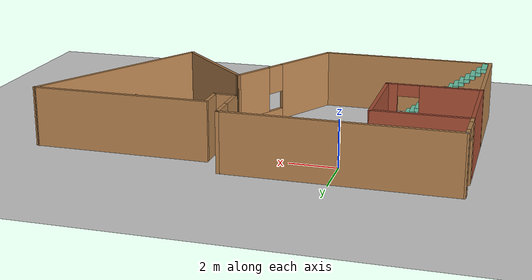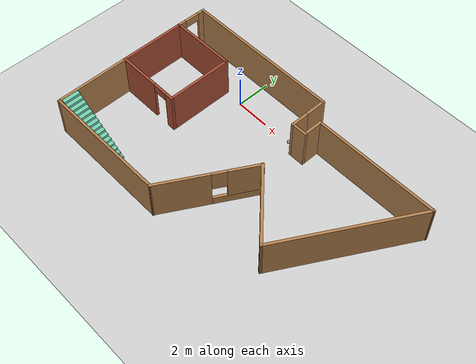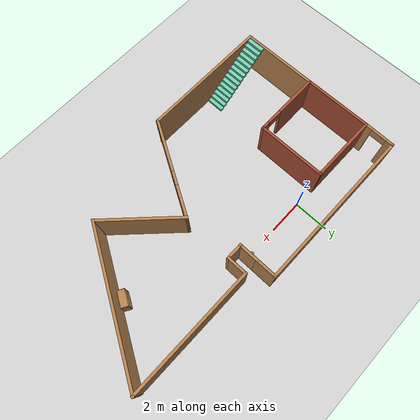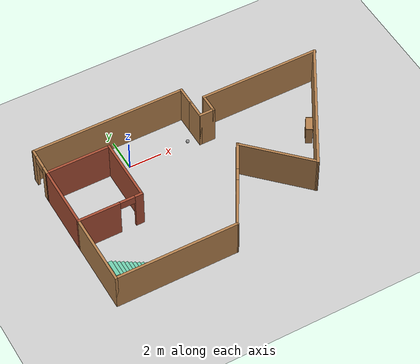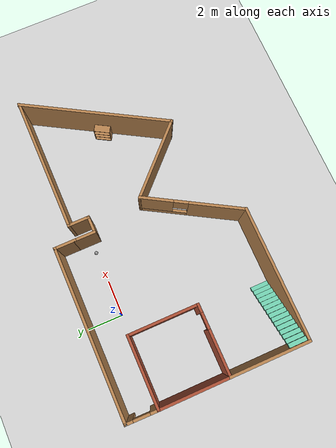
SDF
<sdf version="1.7">
 <world name="default">
  <model name="ground_plane">
   <static>1</static>
   <link name="link">
    <collision name="collision">
     <geometry><plane><normal>0 0 1</normal><size>100 100</size></plane></geometry>
     <surface>
      <contact><collide_bitmask>65535</collide_bitmask></contact>
      <friction><ode><mu>100</mu><mu2>50</mu2></ode></friction>
     </surface>
    </collision>
    <visual name="visual">
     <cast_shadows>0</cast_shadows>
     <geometry><plane><normal>0 0 1</normal><size>100 100</size></plane></geometry>
     <material>
      <script><uri>file://media/materials/scripts/gazebo.material</uri><name>Gazebo/Grey</name></script>
     </material>
    </visual>
   </link>
  </model>
  <model name="Building">
   <pose>3.7698 -3.19808 0 0 -0 0</pose>
   <link name="Stairs_3">
    <visual name="Stairs_3_Visual_0">
     <pose>-5.32922 -4.35034 0.083333 0 -0 -1.5708</pose>
     <geometry><box><size>1 0.233333 0.166667</size></box></geometry>
     <material>
      <script><uri>file://media/materials/scripts/gazebo.material</uri><name>Gazebo/Grey</name></script>
      <ambient>0.435294 0.796078 0.67451 1</ambient>
     </material>
     <meta><layer>0</layer></meta>
    </visual>
    <collision name="Stairs_3_Collision_0">
     <geometry><box><size>1 0.233333 0.166667</size></box></geometry>
     <pose>-5.32922 -4.35034 0.083333 0 -0 -1.5708</pose>
    </collision>
    <visual name="Stairs_3_Visual_1">
     <pose>-5.56255 -4.35034 0.25 0 -0 -1.5708</pose>
     <geometry><box><size>1 0.233333 0.166667</size></box></geometry>
     <material>
      <script><uri>file://media/materials/scripts/gazebo.material</uri><name>Gazebo/Grey</name></script>
      <ambient>0.435294 0.796078 0.67451 1</ambient>
     </material>
     <meta><layer>0</layer></meta>
    </visual>
    <collision name="Stairs_3_Collision_1">
     <geometry><box><size>1 0.233333 0.166667</size></box></geometry>
     <pose>-5.56255 -4.35034 0.25 0 -0 -1.5708</pose>
    </collision>
    <visual name="Stairs_3_Visual_2">
     <pose>-5.79589 -4.35034 0.416667 0 -0 -1.5708</pose>
     <geometry><box><size>1 0.233333 0.166667</size></box></geometry>
     <material>
      <script><uri>file://media/materials/scripts/gazebo.material</uri><name>Gazebo/Grey</name></script>
      <ambient>0.435294 0.796078 0.67451 1</ambient>
     </material>
     <meta><layer>0</layer></meta>
    </visual>
    <collision name="Stairs_3_Collision_2">
     <geometry><box><size>1 0.233333 0.166667</size></box></geometry>
     <pose>-5.79589 -4.35034 0.416667 0 -0 -1.5708</pose>
    </collision>
    <visual name="Stairs_3_Visual_3">
     <pose>-6.02922 -4.35034 0.583333 0 -0 -1.5708</pose>
     <geometry><box><size>1 0.233333 0.166667</size></box></geometry>
     <material>
      <script><uri>file://media/materials/scripts/gazebo.material</uri><name>Gazebo/Grey</name></script>
      <ambient>0.435294 0.796078 0.67451 1</ambient>
     </material>
     <meta><layer>0</layer></meta>
    </visual>
    <collision name="Stairs_3_Collision_3">
     <geometry><box><size>1 0.233333 0.166667</size></box></geometry>
     <pose>-6.02922 -4.35034 0.583333 0 -0 -1.5708</pose>
    </collision>
    <visual name="Stairs_3_Visual_4">
     <pose>-6.26255 -4.35034 0.75 0 -0 -1.5708</pose>
     <geometry><box><size>1 0.233333 0.166667</size></box></geometry>
     <material>
      <script><uri>file://media/materials/scripts/gazebo.material</uri><name>Gazebo/Grey</name></script>
      <ambient>0.435294 0.796078 0.67451 1</ambient>
     </material>
     <meta><layer>0</layer></meta>
    </visual>
    <collision name="Stairs_3_Collision_4">
     <geometry><box><size>1 0.233333 0.166667</size></box></geometry>
     <pose>-6.26255 -4.35034 0.75 0 -0 -1.5708</pose>
    </collision>
    <visual name="Stairs_3_Visual_5">
     <pose>-6.49589 -4.35034 0.916667 0 -0 -1.5708</pose>
     <geometry><box><size>1 0.233333 0.166667</size></box></geometry>
     <material>
      <script><uri>file://media/materials/scripts/gazebo.material</uri><name>Gazebo/Grey</name></script>
      <ambient>0.435294 0.796078 0.67451 1</ambient>
     </material>
     <meta><layer>0</layer></meta>
    </visual>
    <collision name="Stairs_3_Collision_5">
     <geometry><box><size>1 0.233333 0.166667</size></box></geometry>
     <pose>-6.49589 -4.35034 0.916667 0 -0 -1.5708</pose>
    </collision>
    <visual name="Stairs_3_Visual_6">
     <pose>-6.72922 -4.35034 1.08333 0 -0 -1.5708</pose>
     <geometry><box><size>1 0.233333 0.166667</size></box></geometry>
     <material>
      <script><uri>file://media/materials/scripts/gazebo.material</uri><name>Gazebo/Grey</name></script>
      <ambient>0.435294 0.796078 0.67451 1</ambient>
     </material>
     <meta><layer>0</layer></meta>
    </visual>
    <collision name="Stairs_3_Collision_6">
     <geometry><box><size>1 0.233333 0.166667</size></box></geometry>
     <pose>-6.72922 -4.35034 1.08333 0 -0 -1.5708</pose>
    </collision>
    <visual name="Stairs_3_Visual_7">
     <pose>-6.96255 -4.35034 1.25 0 -0 -1.5708</pose>
     <geometry><box><size>1 0.233333 0.166667</size></box></geometry>
     <material>
      <script><uri>file://media/materials/scripts/gazebo.material</uri><name>Gazebo/Grey</name></script>
      <ambient>0.435294 0.796078 0.67451 1</ambient>
     </material>
     <meta><layer>0</layer></meta>
    </visual>
    <collision name="Stairs_3_Collision_7">
     <geometry><box><size>1 0.233333 0.166667</size></box></geometry>
     <pose>-6.96255 -4.35034 1.25 0 -0 -1.5708</pose>
    </collision>
    <visual name="Stairs_3_Visual_8">
     <pose>-7.19589 -4.35034 1.41667 0 -0 -1.5708</pose>
     <geometry><box><size>1 0.233333 0.166667</size></box></geometry>
     <material>
      <script><uri>file://media/materials/scripts/gazebo.material</uri><name>Gazebo/Grey</name></script>
      <ambient>0.435294 0.796078 0.67451 1</ambient>
     </material>
     <meta><layer>0</layer></meta>
    </visual>
    <collision name="Stairs_3_Collision_8">
     <geometry><box><size>1 0.233333 0.166667</size></box></geometry>
     <pose>-7.19589 -4.35034 1.41667 0 -0 -1.5708</pose>
    </collision>
    <visual name="Stairs_3_Visual_9">
     <pose>-7.42922 -4.35034 1.58333 0 -0 -1.5708</pose>
     <geometry><box><size>1 0.233333 0.166667</size></box></geometry>
     <material>
      <script><uri>file://media/materials/scripts/gazebo.material</uri><name>Gazebo/Grey</name></script>
      <ambient>0.435294 0.796078 0.67451 1</ambient>
     </material>
     <meta><layer>0</layer></meta>
    </visual>
    <collision name="Stairs_3_Collision_9">
     <geometry><box><size>1 0.233333 0.166667</size></box></geometry>
     <pose>-7.42922 -4.35034 1.58333 0 -0 -1.5708</pose>
    </collision>
    <visual name="Stairs_3_Visual_10">
     <pose>-7.66255 -4.35034 1.75 0 -0 -1.5708</pose>
     <geometry><box><size>1 0.233333 0.166667</size></box></geometry>
     <material>
      <script><uri>file://media/materials/scripts/gazebo.material</uri><name>Gazebo/Grey</name></script>
      <ambient>0.435294 0.796078 0.67451 1</ambient>
     </material>
     <meta><layer>0</layer></meta>
    </visual>
    <collision name="Stairs_3_Collision_10">
     <geometry><box><size>1 0.233333 0.166667</size></box></geometry>
     <pose>-7.66255 -4.35034 1.75 0 -0 -1.5708</pose>
    </collision>
    <visual name="Stairs_3_Visual_11">
     <pose>-7.89589 -4.35034 1.91667 0 -0 -1.5708</pose>
     <geometry><box><size>1 0.233333 0.166667</size></box></geometry>
     <material>
      <script><uri>file://media/materials/scripts/gazebo.material</uri><name>Gazebo/Grey</name></script>
      <ambient>0.435294 0.796078 0.67451 1</ambient>
     </material>
     <meta><layer>0</layer></meta>
    </visual>
    <collision name="Stairs_3_Collision_11">
     <geometry><box><size>1 0.233333 0.166667</size></box></geometry>
     <pose>-7.89589 -4.35034 1.91667 0 -0 -1.5708</pose>
    </collision>
    <visual name="Stairs_3_Visual_12">
     <pose>-8.12922 -4.35034 2.08333 0 -0 -1.5708</pose>
     <geometry><box><size>1 0.233333 0.166667</size></box></geometry>
     <material>
      <script><uri>file://media/materials/scripts/gazebo.material</uri><name>Gazebo/Grey</name></script>
      <ambient>0.435294 0.796078 0.67451 1</ambient>
     </material>
     <meta><layer>0</layer></meta>
    </visual>
    <collision name="Stairs_3_Collision_12">
     <geometry><box><size>1 0.233333 0.166667</size></box></geometry>
     <pose>-8.12922 -4.35034 2.08333 0 -0 -1.5708</pose>
    </collision>
    <visual name="Stairs_3_Visual_13">
     <pose>-8.36255 -4.35034 2.25 0 -0 -1.5708</pose>
     <geometry><box><size>1 0.233333 0.166667</size></box></geometry>
     <material>
      <script><uri>file://media/materials/scripts/gazebo.material</uri><name>Gazebo/Grey</name></script>
      <ambient>0.435294 0.796078 0.67451 1</ambient>
     </material>
     <meta><layer>0</layer></meta>
    </visual>
    <collision name="Stairs_3_Collision_13">
     <geometry><box><size>1 0.233333 0.166667</size></box></geometry>
     <pose>-8.36255 -4.35034 2.25 0 -0 -1.5708</pose>
    </collision>
    <visual name="Stairs_3_Visual_14">
     <pose>-8.59589 -4.35034 2.41667 0 -0 -1.5708</pose>
     <geometry><box><size>1 0.233333 0.166667</size></box></geometry>
     <material>
      <script><uri>file://media/materials/scripts/gazebo.material</uri><name>Gazebo/Grey</name></script>
      <ambient>0.435294 0.796078 0.67451 1</ambient>
     </material>
     <meta><layer>0</layer></meta>
    </visual>
    <collision name="Stairs_3_Collision_14">
     <geometry><box><size>1 0.233333 0.166667</size></box></geometry>
     <pose>-8.59589 -4.35034 2.41667 0 -0 -1.5708</pose>
    </collision>
   </link>
   <link name="Wall_0">
    <collision name="Wall_0_Collision">
     <geometry><box><size>4 0.15 2.5</size></box></geometry>
     <pose>0 0 1.25 0 -0 0</pose>
    </collision>
    <visual name="Wall_0_Visual">
     <pose>0 0 1.25 0 -0 0</pose>
     <geometry><box><size>4 0.15 2.5</size></box></geometry>
     <material>
      <script><uri>file://media/materials/scripts/gazebo.material</uri><name>Gazebo/Bricks</name></script>
      <ambient>1 1 1 1</ambient>
     </material>
     <meta><layer>0</layer></meta>
    </visual>
    <pose>-8.80198 1.32395 0 0 -0 1.5708</pose>
   </link>
   <link name="Wall_10">
    <collision name="Wall_10_Collision">
     <geometry><box><size>8.5 0.15 2.5</size></box></geometry>
     <pose>0 0 1.25 0 -0 0</pose>
    </collision>
    <visual name="Wall_10_Visual">
     <pose>0 0 1.25 0 -0 0</pose>
     <geometry><box><size>8.5 0.15 2.5</size></box></geometry>
     <material>
      <script><uri>file://media/materials/scripts/gazebo.material</uri><name>Gazebo/Wood</name></script>
      <ambient>1 1 1 1</ambient>
     </material>
     <meta><layer>0</layer></meta>
    </visual>
    <pose>6.68821 0.261655 0 0 -0 1.0472</pose>
   </link>
   <link name="Wall_11">
    <collision name="Wall_11_Collision">
     <geometry><box><size>7.5 0.15 2.5</size></box></geometry>
     <pose>0 0 1.25 0 -0 0</pose>
    </collision>
    <visual name="Wall_11_Visual">
     <pose>0 0 1.25 0 -0 0</pose>
     <geometry><box><size>7.5 0.15 2.5</size></box></geometry>
     <material>
      <script><uri>file://media/materials/scripts/gazebo.material</uri><name>Gazebo/Wood</name></script>
      <ambient>1 1 1 1</ambient>
     </material>
     <meta><layer>0</layer></meta>
    </visual>
    <pose>5.10072 3.87731 0 0 -0 3.14159</pose>
   </link>
   <link name="Wall_12">
    <collision name="Wall_12_Collision">
     <geometry><box><size>1.25 0.15 2.5</size></box></geometry>
     <pose>0 0 1.25 0 -0 0</pose>
    </collision>
    <visual name="Wall_12_Visual">
     <pose>0 0 1.25 0 -0 0</pose>
     <geometry><box><size>1.25 0.15 2.5</size></box></geometry>
     <material>
      <script><uri>file://media/materials/scripts/gazebo.material</uri><name>Gazebo/Wood</name></script>
      <ambient>1 1 1 1</ambient>
     </material>
     <meta><layer>0</layer></meta>
    </visual>
    <pose>1.42572 3.32731 0 0 -0 -1.5708</pose>
   </link>
   <link name="Wall_13">
    <collision name="Wall_13_Collision">
     <geometry><box><size>1 0.15 2.5</size></box></geometry>
     <pose>0 0 1.25 0 -0 0</pose>
    </collision>
    <visual name="Wall_13_Visual">
     <pose>0 0 1.25 0 -0 0</pose>
     <geometry><box><size>1 0.15 2.5</size></box></geometry>
     <material>
      <script><uri>file://media/materials/scripts/gazebo.material</uri><name>Gazebo/Wood</name></script>
      <ambient>1 1 1 1</ambient>
     </material>
     <meta><layer>0</layer></meta>
    </visual>
    <pose>1.00072 2.77731 0 0 -0 3.14159</pose>
   </link>
   <link name="Wall_14">
    <collision name="Wall_14_Collision">
     <geometry><box><size>1.25 0.15 2.5</size></box></geometry>
     <pose>0 0 1.25 0 -0 0</pose>
    </collision>
    <visual name="Wall_14_Visual">
     <pose>0 0 1.25 0 -0 0</pose>
     <geometry><box><size>1.25 0.15 2.5</size></box></geometry>
     <material>
      <script><uri>file://media/materials/scripts/gazebo.material</uri><name>Gazebo/Wood</name></script>
      <ambient>1 1 1 1</ambient>
     </material>
     <meta><layer>0</layer></meta>
    </visual>
    <pose>0.575715 3.32731 0 0 -0 1.5708</pose>
   </link>
   <link name="Wall_15">
    <collision name="Wall_15_Collision">
     <geometry><box><size>1.25 0.15 2.5</size></box></geometry>
     <pose>0 0 1.25 0 -0 0</pose>
    </collision>
    <visual name="Wall_15_Visual">
     <pose>0 0 1.25 0 -0 0</pose>
     <geometry><box><size>1.25 0.15 2.5</size></box></geometry>
     <material>
      <script><uri>file://media/materials/scripts/gazebo.material</uri><name>Gazebo/Wood</name></script>
      <ambient>1 1 1 1</ambient>
     </material>
     <meta><layer>0</layer></meta>
    </visual>
    <pose>0.575715 4.42731 0 0 -0 1.5708</pose>
   </link>
   <link name="Wall_16">
    <collision name="Wall_16_Collision">
     <geometry><box><size>9.5 0.15 2.5</size></box></geometry>
     <pose>0 0 1.25 0 -0 0</pose>
    </collision>
    <visual name="Wall_16_Visual">
     <pose>0 0 1.25 0 -0 0</pose>
     <geometry><box><size>9.5 0.15 2.5</size></box></geometry>
     <material>
      <script><uri>file://media/materials/scripts/gazebo.material</uri><name>Gazebo/Wood</name></script>
      <ambient>1 1 1 1</ambient>
     </material>
     <meta><layer>0</layer></meta>
    </visual>
    <pose>-4.09929 4.97731 0 0 -0 3.14159</pose>
   </link>
   <link name="Wall_18">
    <collision name="Wall_18_Collision">
     <geometry><box><size>0.15 0.15 2.5</size></box></geometry>
     <pose>0 0 1.25 0 -0 0</pose>
    </collision>
    <visual name="Wall_18_Visual">
     <pose>0 0 1.25 0 -0 0</pose>
     <geometry><box><size>0.15 0.15 2.5</size></box></geometry>
     <material>
      <script><uri>file://media/materials/scripts/gazebo.material</uri><name>Gazebo/Grey</name></script>
      <ambient>1 1 1 1</ambient>
     </material>
     <meta><layer>0</layer></meta>
    </visual>
    <pose>-8.77429 4.97731 0 0 -0 0</pose>
   </link>
   <link name="Wall_2">
    <collision name="Wall_2_Collision">
     <geometry><box><size>4 0.15 2.5</size></box></geometry>
     <pose>0 0 1.25 0 -0 0</pose>
    </collision>
    <visual name="Wall_2_Visual">
     <pose>0 0 1.25 0 -0 0</pose>
     <geometry><box><size>4 0.15 2.5</size></box></geometry>
     <material>
      <script><uri>file://media/materials/scripts/gazebo.material</uri><name>Gazebo/Bricks</name></script>
      <ambient>1 1 1 1</ambient>
     </material>
     <meta><layer>0</layer></meta>
    </visual>
    <pose>-6.87698 3.24895 0 0 -0 0</pose>
   </link>
   <link name="Wall_3">
    <collision name="Wall_3_Collision">
     <geometry><box><size>4 0.15 2.5</size></box></geometry>
     <pose>0 0 1.25 0 -0 0</pose>
    </collision>
    <visual name="Wall_3_Visual">
     <pose>0 0 1.25 0 -0 0</pose>
     <geometry><box><size>4 0.15 2.5</size></box></geometry>
     <material>
      <script><uri>file://media/materials/scripts/gazebo.material</uri><name>Gazebo/Bricks</name></script>
      <ambient>1 1 1 1</ambient>
     </material>
     <meta><layer>0</layer></meta>
    </visual>
    <pose>-4.95198 1.32395 0 0 -0 -1.5708</pose>
   </link>
   <link name="Wall_36">
    <pose>-8.78813 4.11313 0 0 -0 -1.58682</pose>
    <visual name="Wall_36_Visual_0">
     <pose>-0.702164 0 1.25 0 -0 0</pose>
     <geometry><box><size>0.474256 0.15 2.5</size></box></geometry>
     <material>
      <script><uri>file://media/materials/scripts/gazebo.material</uri><name>Gazebo/Wood</name></script>
      <ambient>1 1 1 1</ambient>
     </material>
     <meta><layer>0</layer></meta>
    </visual>
    <collision name="Wall_36_Collision_0">
     <geometry><box><size>0.474256 0.15 2.5</size></box></geometry>
     <pose>-0.702164 0 1.25 0 -0 0</pose>
    </collision>
    <visual name="Wall_36_Visual_1">
     <pose>0.687128 0 1.25 0 -0 0</pose>
     <geometry><box><size>0.504329 0.15 2.5</size></box></geometry>
     <material>
      <script><uri>file://media/materials/scripts/gazebo.material</uri><name>Gazebo/Wood</name></script>
      <ambient>1 1 1 1</ambient>
     </material>
     <meta><layer>0</layer></meta>
    </visual>
    <collision name="Wall_36_Collision_1">
     <geometry><box><size>0.504329 0.15 2.5</size></box></geometry>
     <pose>0.687128 0 1.25 0 -0 0</pose>
    </collision>
    <visual name="Wall_36_Visual_2">
     <pose>-0.015036 0 2.25 0 -0 0</pose>
     <geometry><box><size>0.9 0.15 0.5</size></box></geometry>
     <material>
      <script><uri>file://media/materials/scripts/gazebo.material</uri><name>Gazebo/Wood</name></script>
      <ambient>1 1 1 1</ambient>
     </material>
     <meta><layer>0</layer></meta>
    </visual>
    <collision name="Wall_36_Collision_2">
     <geometry><box><size>0.9 0.15 0.5</size></box></geometry>
     <pose>-0.015036 0 2.25 0 -0 0</pose>
    </collision>
   </link>
   <link name="Wall_38">
    <pose>-6.87698 -0.601052 0 0 -0 3.14159</pose>
    <visual name="Wall_38_Visual_0">
     <pose>-1.74342 0 1.25 0 -0 0</pose>
     <geometry><box><size>0.513155 0.15 2.5</size></box></geometry>
     <material>
      <script><uri>file://media/materials/scripts/gazebo.material</uri><name>Gazebo/Bricks</name></script>
      <ambient>1 1 1 1</ambient>
     </material>
     <meta><layer>0</layer></meta>
    </visual>
    <collision name="Wall_38_Collision_0">
     <geometry><box><size>0.513155 0.15 2.5</size></box></geometry>
     <pose>-1.74342 0 1.25 0 -0 0</pose>
    </collision>
    <visual name="Wall_38_Visual_1">
     <pose>0.706577 0 1.25 0 -0 0</pose>
     <geometry><box><size>2.58684 0.15 2.5</size></box></geometry>
     <material>
      <script><uri>file://media/materials/scripts/gazebo.material</uri><name>Gazebo/Bricks</name></script>
      <ambient>1 1 1 1</ambient>
     </material>
     <meta><layer>0</layer></meta>
    </visual>
    <collision name="Wall_38_Collision_1">
     <geometry><box><size>2.58684 0.15 2.5</size></box></geometry>
     <pose>0.706577 0 1.25 0 -0 0</pose>
    </collision>
    <visual name="Wall_38_Visual_2">
     <pose>-1.03685 0 2.25 0 -0 0</pose>
     <geometry><box><size>0.9 0.15 0.5</size></box></geometry>
     <material>
      <script><uri>file://media/materials/scripts/gazebo.material</uri><name>Gazebo/Bricks</name></script>
      <ambient>1 1 1 1</ambient>
     </material>
     <meta><layer>0</layer></meta>
    </visual>
    <collision name="Wall_38_Collision_2">
     <geometry><box><size>0.9 0.15 0.5</size></box></geometry>
     <pose>-1.03685 0 2.25 0 -0 0</pose>
    </collision>
   </link>
   <link name="Wall_6">
    <collision name="Wall_6_Collision">
     <geometry><box><size>4.5 0.15 2.5</size></box></geometry>
     <pose>0 0 1.25 0 -0 0</pose>
    </collision>
    <visual name="Wall_6_Visual">
     <pose>0 0 1.25 0 -0 0</pose>
     <geometry><box><size>4.5 0.15 2.5</size></box></geometry>
     <material>
      <script><uri>file://media/materials/scripts/gazebo.material</uri><name>Gazebo/Wood</name></script>
      <ambient>1 1 1 1</ambient>
     </material>
     <meta><layer>0</layer></meta>
    </visual>
    <pose>-8.80198 -2.77605 0 0 -0 -1.5708</pose>
   </link>
   <link name="Wall_7">
    <collision name="Wall_7_Collision">
     <geometry><box><size>7.5 0.15 2.5</size></box></geometry>
     <pose>0 0 1.25 0 -0 0</pose>
    </collision>
    <visual name="Wall_7_Visual">
     <pose>0 0 1.25 0 -0 0</pose>
     <geometry><box><size>7.5 0.15 2.5</size></box></geometry>
     <material>
      <script><uri>file://media/materials/scripts/gazebo.material</uri><name>Gazebo/Wood</name></script>
      <ambient>1 1 1 1</ambient>
     </material>
     <meta><layer>0</layer></meta>
    </visual>
    <pose>-5.12698 -4.95105 0 0 -0 0</pose>
   </link>
   <link name="Wall_8">
    <pose>-0.051976 -2.52618 0 0 -0 1.0472</pose>
    <visual name="Wall_8_Visual_0">
     <pose>-1.33048 0 1.25 0 -0 0</pose>
     <geometry><box><size>3.08904 0.15 2.5</size></box></geometry>
     <material>
      <script><uri>file://media/materials/scripts/gazebo.material</uri><name>Gazebo/Wood</name></script>
      <ambient>1 1 1 1</ambient>
     </material>
     <meta><layer>0</layer></meta>
    </visual>
    <collision name="Wall_8_Collision_0">
     <geometry><box><size>3.08904 0.15 2.5</size></box></geometry>
     <pose>-1.33048 0 1.25 0 -0 0</pose>
    </collision>
    <visual name="Wall_8_Visual_1">
     <pose>1.54452 0 0.25 0 -0 0</pose>
     <geometry><box><size>2.66096 0.15 0.5</size></box></geometry>
     <material>
      <script><uri>file://media/materials/scripts/gazebo.material</uri><name>Gazebo/Wood</name></script>
      <ambient>1 1 1 1</ambient>
     </material>
     <meta><layer>0</layer></meta>
    </visual>
    <collision name="Wall_8_Collision_1">
     <geometry><box><size>2.66096 0.15 0.5</size></box></geometry>
     <pose>1.54452 0 0.25 0 -0 0</pose>
    </collision>
    <visual name="Wall_8_Visual_2">
     <pose>1.94452 0 1.5 0 -0 0</pose>
     <geometry><box><size>1.86096 0.15 2</size></box></geometry>
     <material>
      <script><uri>file://media/materials/scripts/gazebo.material</uri><name>Gazebo/Wood</name></script>
      <ambient>1 1 1 1</ambient>
     </material>
     <meta><layer>0</layer></meta>
    </visual>
    <collision name="Wall_8_Collision_2">
     <geometry><box><size>1.86096 0.15 2</size></box></geometry>
     <pose>1.94452 0 1.5 0 -0 0</pose>
    </collision>
    <visual name="Wall_8_Visual_3">
     <pose>0.614037 0 1.9 0 -0 0</pose>
     <geometry><box><size>0.8 0.15 1.2</size></box></geometry>
     <material>
      <script><uri>file://media/materials/scripts/gazebo.material</uri><name>Gazebo/Wood</name></script>
      <ambient>1 1 1 1</ambient>
     </material>
     <meta><layer>0</layer></meta>
    </visual>
    <collision name="Wall_8_Collision_3">
     <geometry><box><size>0.8 0.15 1.2</size></box></geometry>
     <pose>0.614037 0 1.9 0 -0 0</pose>
    </collision>
   </link>
   <link name="Wall_9">
    <collision name="Wall_9_Collision">
     <geometry><box><size>4.75 0.15 2.5</size></box></geometry>
     <pose>0 0 1.25 0 -0 0</pose>
    </collision>
    <visual name="Wall_9_Visual">
     <pose>0 0 1.25 0 -0 0</pose>
     <geometry><box><size>4.75 0.15 2.5</size></box></geometry>
     <material>
      <script><uri>file://media/materials/scripts/gazebo.material</uri><name>Gazebo/Wood</name></script>
      <ambient>1 1 1 1</ambient>
     </material>
     <meta><layer>0</layer></meta>
    </visual>
    <pose>2.97437 -1.72765 0 0 -0 -0.785398</pose>
   </link>
   <static>1</static>
  </model>
  <model name="RSWhiteBall">
   <link name="link_0">
    <inertial>
     <mass>1</mass>
     <inertia><ixx>0.1</ixx><ixy>0</ixy><ixz>0</ixz><iyy>0.1</iyy><iyz>0</iyz><izz>0.1</izz></inertia>
    </inertial>
    <visual name="visual">
     <geometry><sphere><radius>0.1</radius></sphere></geometry>
     <material>
      <lighting>1</lighting>
      <script><uri>file://media/materials/scripts/gazebo.material</uri><name>Gazebo/Grey</name></script>
      <shader type="pixel"><normal_map>__default__</normal_map></shader>
      <ambient>1 1 1 1</ambient>
      <diffuse>1 1 1 1</diffuse>
      <specular>1 1 1 1</specular>
      <emissive>1 1 1 1</emissive>
     </material>
    </visual>
    <collision name="collision">
     <geometry><sphere><radius>0.1</radius></sphere></geometry>
     <surface>
      <friction>
       <ode><mu>1</mu><mu2>1</mu2><fdir1>0 0 0</fdir1><slip1>0</slip1><slip2>0</slip2></ode>
       <torsional>
        <coefficient>1</coefficient>
        <patch_radius>0</patch_radius>
        <surface_radius>0</surface_radius>
        <use_patch_radius>1</use_patch_radius>
        <ode><slip>0</slip></ode>
       </torsional>
      </friction>
      <bounce><restitution_coefficient>0</restitution_coefficient><threshold>1e+06</threshold></bounce>
      <contact>
       <collide_without_contact>0</collide_without_contact>
       <collide_without_contact_bitmask>1</collide_without_contact_bitmask>
       <collide_bitmask>1</collide_bitmask>
       <ode>
        <soft_cfm>0</soft_cfm>
        <soft_erp>0.2</soft_erp>
        <kp>1e+13</kp>
        <kd>1</kd>
        <max_vel>0.01</max_vel>
        <min_depth>0</min_depth>
       </ode>
       <bullet>
        <split_impulse>1</split_impulse>
        <split_impulse_penetration_threshold>-0.01</split_impulse_penetration_threshold>
        <soft_cfm>0</soft_cfm>
        <soft_erp>0.2</soft_erp>
        <kp>1e+13</kp>
        <kd>1</kd>
       </bullet>
      </contact>
     </surface>
    </collision>
   </link>
   <static>0</static>
   <pose>3.75562 0.021016 0.1 0 -0 0</pose>
  </model>
  <model name="bookshelf">
   <static>1</static>
   <link name="link">
    <inertial><mass>1</mass></inertial>
    <collision name="back">
     <pose>0 0.005 0.6 0 -0 0</pose>
     <geometry><box><size>0.9 0.01 1.2</size></box></geometry>
    </collision>
    <visual name="visual1">
     <pose>0 0.005 0.6 0 -0 0</pose>
     <geometry><box><size>0.9 0.01 1.2</size></box></geometry>
     <material>
      <script><uri>file://media/materials/scripts/gazebo.material</uri><name>Gazebo/Wood</name></script>
     </material>
    </visual>
    <collision name="left_side">
     <pose>0.45 -0.195 0.6 0 -0 0</pose>
     <geometry><box><size>0.02 0.4 1.2</size></box></geometry>
    </collision>
    <visual name="visual2">
     <pose>0.45 -0.195 0.6 0 -0 0</pose>
     <geometry><box><size>0.02 0.4 1.2</size></box></geometry>
     <material>
      <script><uri>file://media/materials/scripts/gazebo.material</uri><name>Gazebo/Wood</name></script>
     </material>
    </visual>
    <collision name="right_side">
     <pose>-0.45 -0.195 0.6 0 -0 0</pose>
     <geometry><box><size>0.02 0.4 1.2</size></box></geometry>
    </collision>
    <visual name="visual3">
     <pose>-0.45 -0.195 0.6 0 -0 0</pose>
     <geometry><box><size>0.02 0.4 1.2</size></box></geometry>
     <material>
      <script><uri>file://media/materials/scripts/gazebo.material</uri><name>Gazebo/Wood</name></script>
     </material>
    </visual>
    <collision name="bottom">
     <pose>0 -0.195 0.03 0 -0 0</pose>
     <geometry><box><size>0.88 0.4 0.06</size></box></geometry>
    </collision>
    <visual name="visual4">
     <pose>0 -0.195 0.03 0 -0 0</pose>
     <geometry><box><size>0.88 0.4 0.06</size></box></geometry>
     <material>
      <script><uri>file://media/materials/scripts/gazebo.material</uri><name>Gazebo/Wood</name></script>
     </material>
    </visual>
    <collision name="top">
     <pose>0 -0.195 1.19 0 -0 0</pose>
     <geometry><box><size>0.88 0.4 0.02</size></box></geometry>
    </collision>
    <visual name="visual5">
     <pose>0 -0.195 1.19 0 -0 0</pose>
     <geometry><box><size>0.88 0.4 0.02</size></box></geometry>
     <material>
      <script><uri>file://media/materials/scripts/gazebo.material</uri><name>Gazebo/Wood</name></script>
     </material>
    </visual>
    <collision name="low_shelf">
     <pose>0 -0.195 0.43 0 -0 0</pose>
     <geometry><box><size>0.88 0.4 0.02</size></box></geometry>
    </collision>
    <visual name="visual6">
     <pose>0 -0.195 0.43 0 -0 0</pose>
     <geometry><box><size>0.88 0.4 0.02</size></box></geometry>
     <material>
      <script><uri>file://media/materials/scripts/gazebo.material</uri><name>Gazebo/Wood</name></script>
     </material>
    </visual>
    <collision name="high_shelf">
     <pose>0 -0.195 0.8 0 -0 0</pose>
     <geometry><box><size>0.88 0.4 0.02</size></box></geometry>
    </collision>
    <visual name="visual7">
     <pose>0 -0.195 0.8 0 -0 0</pose>
     <geometry><box><size>0.88 0.4 0.02</size></box></geometry>
     <material>
      <script><uri>file://media/materials/scripts/gazebo.material</uri><name>Gazebo/Wood</name></script>
     </material>
    </visual>
   </link>
   <pose>10.1802 -3.1177 0 0 0 -2.09103</pose>
  </model>
 </world>
</sdf>
